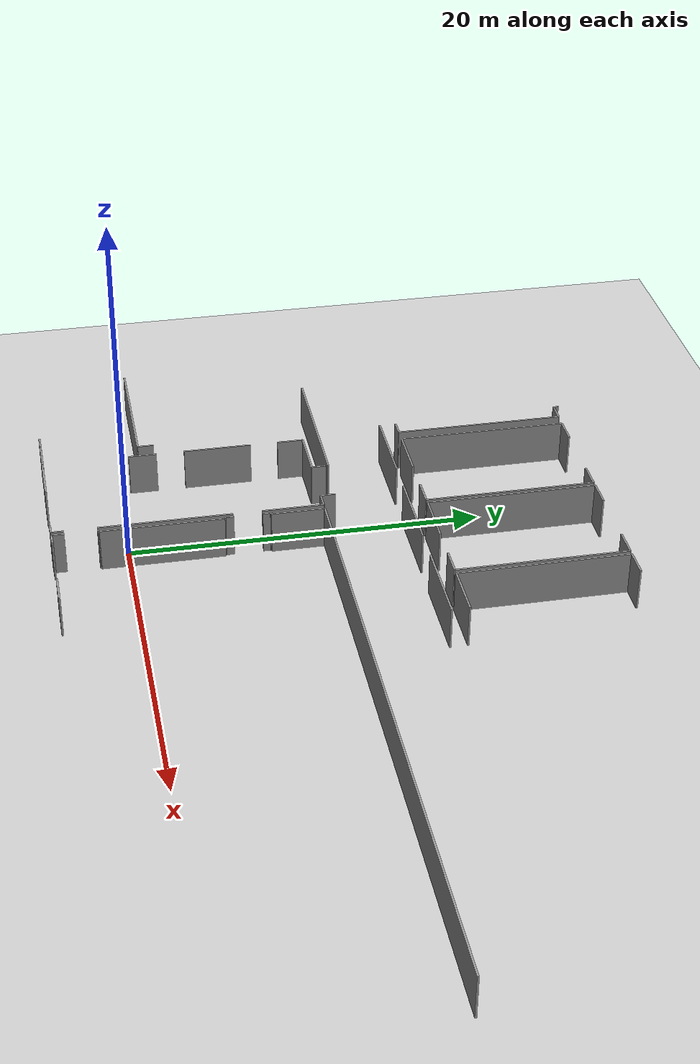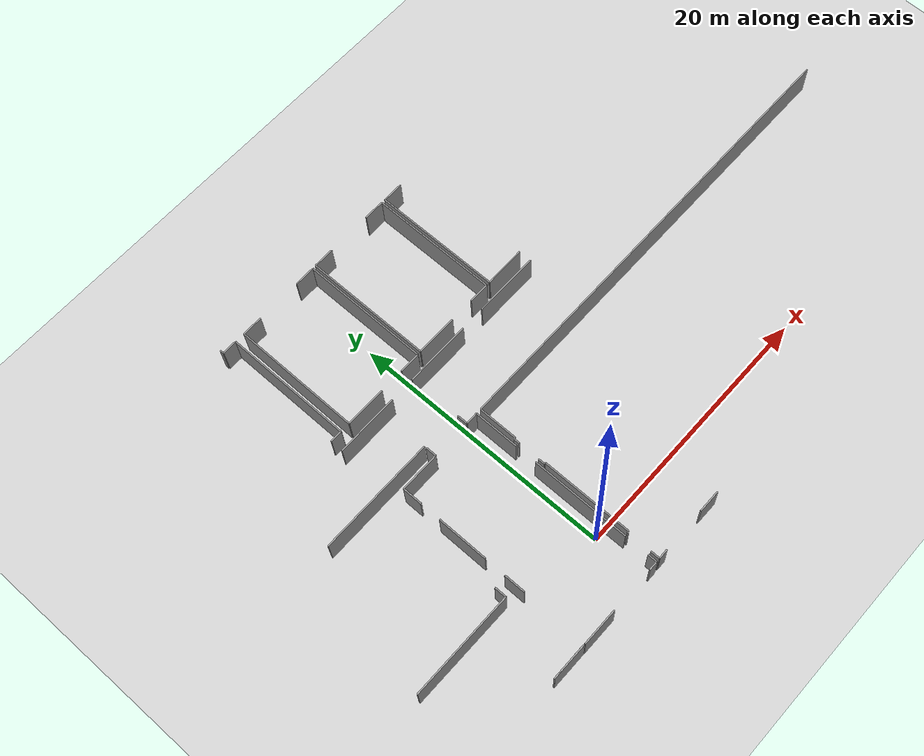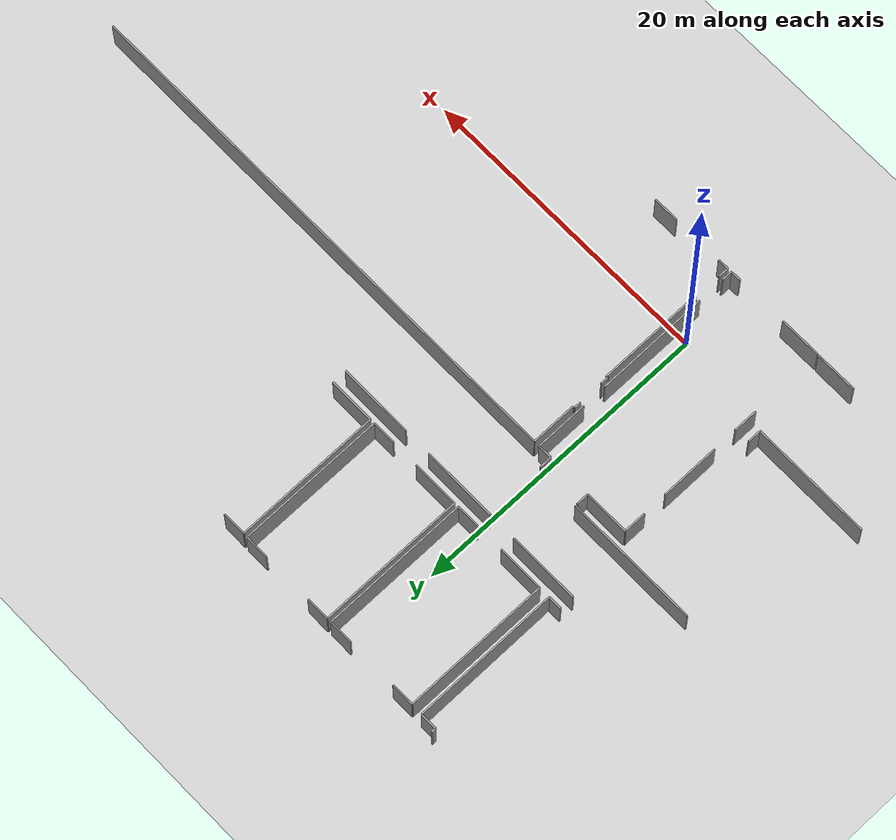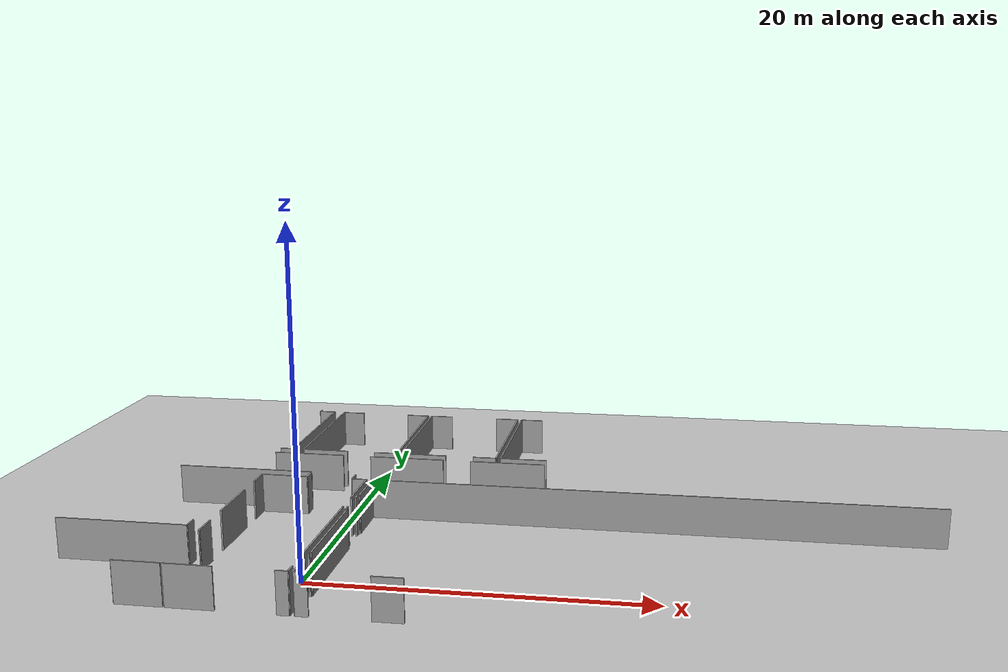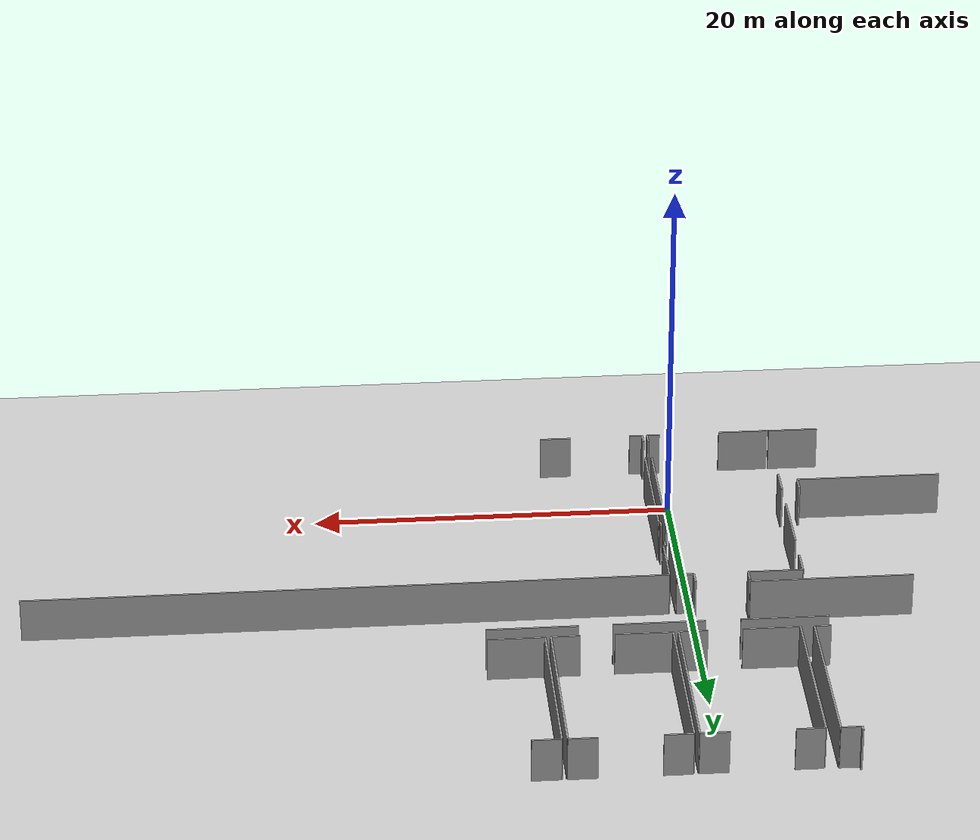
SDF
<sdf version="1.6">
 <world name="default">
  <model name="ground_plane">
   <static>1</static>
   <link name="link">
    <collision name="collision">
     <geometry><plane><normal>0 0 1</normal><size>100 100</size></plane></geometry>
     <surface><friction><ode><mu>100</mu><mu2>50</mu2></ode></friction></surface>
    </collision>
    <visual name="visual">
     <cast_shadows>0</cast_shadows>
     <geometry><plane><normal>0 0 1</normal><size>100 100</size></plane></geometry>
     <material>
      <script><uri>file://media/materials/scripts/gazebo.material</uri><name>Gazebo/Grey</name></script>
     </material>
    </visual>
   </link>
  </model>
  <model name="0510032192_A_40_1_103">
   <static>1</static>
   <link name="Wall_186">
    <collision name="Wall_186_Collision">
     <geometry><box><size>4.75575826102 0.1 2.5</size></box></geometry>
     <pose>2.37787913051 0 1.25 0 0 0</pose>
    </collision>
    <visual name="Wall_186_Visual">
     <pose>2.37787913051 0 1.25 0 0 0</pose>
     <geometry><box><size>4.75575826102 0.1 2.5</size></box></geometry>
     <material>
      <script><uri>file://media/materials/scripts/gazebo.material</uri><name>Gazebo/Grey</name></script>
      <ambient>1 1 1 1</ambient>
     </material>
    </visual>
    <pose>60.6250555817 -10.9934826522 0 0 0 0.0</pose>
   </link>
   <link name="Wall_187">
    <collision name="Wall_187_Collision">
     <geometry><box><size>4.98278556274 0.1 2.5</size></box></geometry>
     <pose>2.49139278137 0 1.25 0 0 0</pose>
    </collision>
    <visual name="Wall_187_Visual">
     <pose>2.49139278137 0 1.25 0 0 0</pose>
     <geometry><box><size>4.98278556274 0.1 2.5</size></box></geometry>
     <material>
      <script><uri>file://media/materials/scripts/gazebo.material</uri><name>Gazebo/Grey</name></script>
      <ambient>1 1 1 1</ambient>
     </material>
    </visual>
    <pose>67.2596648584 -10.9934826522 0 0 0 0.0</pose>
   </link>
   <link name="Wall_188">
    <collision name="Wall_188_Collision">
     <geometry><box><size>4.95699566781 0.1 2.5</size></box></geometry>
     <pose>2.4784978339 0 1.25 0 0 0</pose>
    </collision>
    <visual name="Wall_188_Visual">
     <pose>2.4784978339 0 1.25 0 0 0</pose>
     <geometry><box><size>4.95699566781 0.1 2.5</size></box></geometry>
     <material>
      <script><uri>file://media/materials/scripts/gazebo.material</uri><name>Gazebo/Grey</name></script>
      <ambient>1 1 1 1</ambient>
     </material>
    </visual>
    <pose>74.0822989849 -10.9934826522 0 0 0 0.0</pose>
   </link>
   <link name="Wall_203">
    <collision name="Wall_203_Collision">
     <geometry><box><size>8.904120031 0.1 2.5</size></box></geometry>
     <pose>4.4520600155 0 1.25 0 0 0</pose>
    </collision>
    <visual name="Wall_203_Visual">
     <pose>4.4520600155 0 1.25 0 0 0</pose>
     <geometry><box><size>8.904120031 0.1 2.5</size></box></geometry>
     <material>
      <script><uri>file://media/materials/scripts/gazebo.material</uri><name>Gazebo/Grey</name></script>
      <ambient>1 1 1 1</ambient>
     </material>
    </visual>
    <pose>64.3764054222 -14.7831997256 0 0 0 3.14159265359</pose>
   </link>
   <link name="Wall_216">
    <collision name="Wall_216_Collision">
     <geometry><box><size>0.292327823866 0.1 2.5</size></box></geometry>
     <pose>0.146163911933 0 1.25 0 0 0</pose>
    </collision>
    <visual name="Wall_216_Visual">
     <pose>0.146163911933 0 1.25 0 0 0</pose>
     <geometry><box><size>0.292327823866 0.1 2.5</size></box></geometry>
     <material>
      <script><uri>file://media/materials/scripts/gazebo.material</uri><name>Gazebo/Grey</name></script>
      <ambient>1 1 1 1</ambient>
     </material>
    </visual>
    <pose>60.4343628117 -0.0200729231512 0 0 0 -1.57079632679</pose>
   </link>
   <link name="Wall_217">
    <collision name="Wall_217_Collision">
     <geometry><box><size>1.11938307522 0.1 2.5</size></box></geometry>
     <pose>0.559691537611 0 1.25 0 0 0</pose>
    </collision>
    <visual name="Wall_217_Visual">
     <pose>0.559691537611 0 1.25 0 0 0</pose>
     <geometry><box><size>1.11938307522 0.1 2.5</size></box></geometry>
     <material>
      <script><uri>file://media/materials/scripts/gazebo.material</uri><name>Gazebo/Grey</name></script>
      <ambient>1 1 1 1</ambient>
     </material>
    </visual>
    <pose>60.4343628117 -0.312400747018 0 0 0 0.0</pose>
   </link>
   <link name="Wall_218">
    <collision name="Wall_218_Collision">
     <geometry><box><size>9.72977780036 0.1 2.5</size></box></geometry>
     <pose>4.86488890018 0 1.25 0 0 0</pose>
    </collision>
    <visual name="Wall_218_Visual">
     <pose>4.86488890018 0 1.25 0 0 0</pose>
     <geometry><box><size>9.72977780036 0.1 2.5</size></box></geometry>
     <material>
      <script><uri>file://media/materials/scripts/gazebo.material</uri><name>Gazebo/Grey</name></script>
      <ambient>1 1 1 1</ambient>
     </material>
    </visual>
    <pose>61.553745887 -0.312400747018 0 0 0 -1.57079632679</pose>
   </link>
   <link name="Wall_219">
    <collision name="Wall_219_Collision">
     <geometry><box><size>0.914207310101 0.1 2.5</size></box></geometry>
     <pose>0.457103655051 0 1.25 0 0 0</pose>
    </collision>
    <visual name="Wall_219_Visual">
     <pose>0.457103655051 0 1.25 0 0 0</pose>
     <geometry><box><size>0.914207310101 0.1 2.5</size></box></geometry>
     <material>
      <script><uri>file://media/materials/scripts/gazebo.material</uri><name>Gazebo/Grey</name></script>
      <ambient>1 1 1 1</ambient>
     </material>
    </visual>
    <pose>61.553745887 -10.0421785474 0 0 0 3.14159265359</pose>
   </link>
   <link name="Wall_221">
    <collision name="Wall_221_Collision">
     <geometry><box><size>3.08271822952 0.1 2.5</size></box></geometry>
     <pose>1.54135911476 0 1.25 0 0 0</pose>
    </collision>
    <visual name="Wall_221_Visual">
     <pose>1.54135911476 0 1.25 0 0 0</pose>
     <geometry><box><size>3.08271822952 0.1 2.5</size></box></geometry>
     <material>
      <script><uri>file://media/materials/scripts/gazebo.material</uri><name>Gazebo/Grey</name></script>
      <ambient>1 1 1 1</ambient>
     </material>
    </visual>
    <pose>62.3039396288 -10.0360804441 0 0 0 0.0</pose>
   </link>
   <link name="Wall_222">
    <collision name="Wall_222_Collision">
     <geometry><box><size>1.57788421226 0.1 2.5</size></box></geometry>
     <pose>0.788942106132 0 1.25 0 0 0</pose>
    </collision>
    <visual name="Wall_222_Visual">
     <pose>0.788942106132 0 1.25 0 0 0</pose>
     <geometry><box><size>1.57788421226 0.1 2.5</size></box></geometry>
     <material>
      <script><uri>file://media/materials/scripts/gazebo.material</uri><name>Gazebo/Grey</name></script>
      <ambient>1 1 1 1</ambient>
     </material>
    </visual>
    <pose>67.2567428506 -10.0360804441 0 0 0 0.0</pose>
   </link>
   <link name="Wall_223">
    <collision name="Wall_223_Collision">
     <geometry><box><size>9.699414328 0.1 2.5</size></box></geometry>
     <pose>4.849707164 0 1.25 0 0 0</pose>
    </collision>
    <visual name="Wall_223_Visual">
     <pose>4.849707164 0 1.25 0 0 0</pose>
     <geometry><box><size>9.699414328 0.1 2.5</size></box></geometry>
     <material>
      <script><uri>file://media/materials/scripts/gazebo.material</uri><name>Gazebo/Grey</name></script>
      <ambient>1 1 1 1</ambient>
     </material>
    </visual>
    <pose>68.8346270629 -10.0360804441 0 0 0 1.57079632679</pose>
   </link>
   <link name="Wall_224">
    <collision name="Wall_224_Collision">
     <geometry><box><size>1.57635968646 0.1 2.5</size></box></geometry>
     <pose>0.788179843228 0 1.25 0 0 0</pose>
    </collision>
    <visual name="Wall_224_Visual">
     <pose>0.788179843228 0 1.25 0 0 0</pose>
     <geometry><box><size>1.57635968646 0.1 2.5</size></box></geometry>
     <material>
      <script><uri>file://media/materials/scripts/gazebo.material</uri><name>Gazebo/Grey</name></script>
      <ambient>1 1 1 1</ambient>
     </material>
    </visual>
    <pose>68.8346270629 -0.336666116143 0 0 0 3.14159265359</pose>
   </link>
   <link name="Wall_225">
    <collision name="Wall_225_Collision">
     <geometry><box><size>1.53240252563 0.1 2.5</size></box></geometry>
     <pose>0.766201262816 0 1.25 0 0 0</pose>
    </collision>
    <visual name="Wall_225_Visual">
     <pose>0.766201262816 0 1.25 0 0 0</pose>
     <geometry><box><size>1.53240252563 0.1 2.5</size></box></geometry>
     <material>
      <script><uri>file://media/materials/scripts/gazebo.material</uri><name>Gazebo/Grey</name></script>
      <ambient>1 1 1 1</ambient>
     </material>
    </visual>
    <pose>63.8529848945 -0.336666116143 0 0 0 3.14159265359</pose>
   </link>
   <link name="Wall_226">
    <collision name="Wall_226_Collision">
     <geometry><box><size>9.69942860621 0.1 2.5</size></box></geometry>
     <pose>4.84971430311 0 1.25 0 0 0</pose>
    </collision>
    <visual name="Wall_226_Visual">
     <pose>4.84971430311 0 1.25 0 0 0</pose>
     <geometry><box><size>9.69942860621 0.1 2.5</size></box></geometry>
     <material>
      <script><uri>file://media/materials/scripts/gazebo.material</uri><name>Gazebo/Grey</name></script>
      <ambient>1 1 1 1</ambient>
     </material>
    </visual>
    <pose>62.3205823689 -0.336666116143 0 0 0 -1.57251217511</pose>
   </link>
   <link name="Wall_227">
    <collision name="Wall_227_Collision">
     <geometry><box><size>9.6986520651 0.1 2.5</size></box></geometry>
     <pose>4.84932603255 0 1.25 0 0 0</pose>
    </collision>
    <visual name="Wall_227_Visual">
     <pose>4.84932603255 0 1.25 0 0 0</pose>
     <geometry><box><size>9.6986520651 0.1 2.5</size></box></geometry>
     <material>
      <script><uri>file://media/materials/scripts/gazebo.material</uri><name>Gazebo/Grey</name></script>
      <ambient>1 1 1 1</ambient>
     </material>
    </visual>
    <pose>69.1176806881 -10.0194377041 0 0 0 1.57079632679</pose>
   </link>
   <link name="Wall_228">
    <collision name="Wall_228_Collision">
     <geometry><box><size>1.56619618106 0.1 2.5</size></box></geometry>
     <pose>0.783098090531 0 1.25 0 0 0</pose>
    </collision>
    <visual name="Wall_228_Visual">
     <pose>0.783098090531 0 1.25 0 0 0</pose>
     <geometry><box><size>1.56619618106 0.1 2.5</size></box></geometry>
     <material>
      <script><uri>file://media/materials/scripts/gazebo.material</uri><name>Gazebo/Grey</name></script>
      <ambient>1 1 1 1</ambient>
     </material>
    </visual>
    <pose>69.1176806881 -0.320785638967 0 0 0 0.0</pose>
   </link>
   <link name="Wall_229">
    <collision name="Wall_229_Collision">
     <geometry><box><size>1.58741249857 0.1 2.5</size></box></geometry>
     <pose>0.793706249285 0 1.25 0 0 0</pose>
    </collision>
    <visual name="Wall_229_Visual">
     <pose>0.793706249285 0 1.25 0 0 0</pose>
     <geometry><box><size>1.58741249857 0.1 2.5</size></box></geometry>
     <material>
      <script><uri>file://media/materials/scripts/gazebo.material</uri><name>Gazebo/Grey</name></script>
      <ambient>1 1 1 1</ambient>
     </material>
    </visual>
    <pose>74.057906572 -0.320785638967 0 0 0 0.0</pose>
   </link>
   <link name="Wall_230">
    <collision name="Wall_230_Collision">
     <geometry><box><size>9.7081803514 0.1 2.5</size></box></geometry>
     <pose>4.8540901757 0 1.25 0 0 0</pose>
    </collision>
    <visual name="Wall_230_Visual">
     <pose>4.8540901757 0 1.25 0 0 0</pose>
     <geometry><box><size>9.7081803514 0.1 2.5</size></box></geometry>
     <material>
      <script><uri>file://media/materials/scripts/gazebo.material</uri><name>Gazebo/Grey</name></script>
      <ambient>1 1 1 1</ambient>
     </material>
    </visual>
    <pose>75.6453190705 -0.320785638967 0 0 0 -1.57079632679</pose>
   </link>
   <link name="Wall_231">
    <collision name="Wall_231_Collision">
     <geometry><box><size>1.56124147218 0.1 2.5</size></box></geometry>
     <pose>0.780620736092 0 1.25 0 0 0</pose>
    </collision>
    <visual name="Wall_231_Visual">
     <pose>0.780620736092 0 1.25 0 0 0</pose>
     <geometry><box><size>1.56124147218 0.1 2.5</size></box></geometry>
     <material>
      <script><uri>file://media/materials/scripts/gazebo.material</uri><name>Gazebo/Grey</name></script>
      <ambient>1 1 1 1</ambient>
     </material>
    </visual>
    <pose>75.6453190705 -10.0289659904 0 0 0 3.14159265359</pose>
   </link>
   <link name="Wall_232">
    <collision name="Wall_232_Collision">
     <geometry><box><size>3.11335037002 0.1 2.5</size></box></geometry>
     <pose>1.55667518501 0 1.25 0 0 0</pose>
    </collision>
    <visual name="Wall_232_Visual">
     <pose>1.55667518501 0 1.25 0 0 0</pose>
     <geometry><box><size>3.11335037002 0.1 2.5</size></box></geometry>
     <material>
      <script><uri>file://media/materials/scripts/gazebo.material</uri><name>Gazebo/Grey</name></script>
      <ambient>1 1 1 1</ambient>
     </material>
    </visual>
    <pose>72.2310164776 -10.0289659904 0 0 0 3.13853218816</pose>
   </link>
   <link name="Wall_233">
    <collision name="Wall_233_Collision">
     <geometry><box><size>3.08436979914 0.1 2.5</size></box></geometry>
     <pose>1.54218489957 0 1.25 0 0 0</pose>
    </collision>
    <visual name="Wall_233_Visual">
     <pose>1.54218489957 0 1.25 0 0 0</pose>
     <geometry><box><size>3.08436979914 0.1 2.5</size></box></geometry>
     <material>
      <script><uri>file://media/materials/scripts/gazebo.material</uri><name>Gazebo/Grey</name></script>
      <ambient>1 1 1 1</ambient>
     </material>
    </visual>
    <pose>75.9528921525 -10.020199967 0 0 0 0.0</pose>
   </link>
   <link name="Wall_237">
    <collision name="Wall_237_Collision">
     <geometry><box><size>1.56899114505 0.1 2.5</size></box></geometry>
     <pose>0.784495572523 0 1.25 0 0 0</pose>
    </collision>
    <visual name="Wall_237_Visual">
     <pose>0.784495572523 0 1.25 0 0 0</pose>
     <geometry><box><size>1.56899114505 0.1 2.5</size></box></geometry>
     <material>
      <script><uri>file://media/materials/scripts/gazebo.material</uri><name>Gazebo/Grey</name></script>
      <ambient>1 1 1 1</ambient>
     </material>
    </visual>
    <pose>77.5089248282 -0.33145731963 0 0 0 3.14159265359</pose>
   </link>
   <link name="Wall_238">
    <collision name="Wall_238_Collision">
     <geometry><box><size>9.68875131316 0.1 2.5</size></box></geometry>
     <pose>4.84437565658 0 1.25 0 0 0</pose>
    </collision>
    <visual name="Wall_238_Visual">
     <pose>4.84437565658 0 1.25 0 0 0</pose>
     <geometry><box><size>9.68875131316 0.1 2.5</size></box></geometry>
     <material>
      <script><uri>file://media/materials/scripts/gazebo.material</uri><name>Gazebo/Grey</name></script>
      <ambient>1 1 1 1</ambient>
     </material>
    </visual>
    <pose>75.9399336831 -0.33145731963 0 0 0 -1.5694588507</pose>
   </link>
   <link name="Wall_318">
    <collision name="Wall_318_Collision">
     <geometry><box><size>0.701281872118 0.1 2.5</size></box></geometry>
     <pose>0.350640936059 0 1.25 0 0 0</pose>
    </collision>
    <visual name="Wall_318_Visual">
     <pose>0.350640936059 0 1.25 0 0 0</pose>
     <geometry><box><size>0.701281872118 0.1 2.5</size></box></geometry>
     <material>
      <script><uri>file://media/materials/scripts/gazebo.material</uri><name>Gazebo/Grey</name></script>
      <ambient>1 1 1 1</ambient>
     </material>
    </visual>
    <pose>68.5604665049 -30.8940073431 0 0 0 1.57079632679</pose>
   </link>
   <link name="Wall_319">
    <collision name="Wall_319_Collision">
     <geometry><box><size>0.0895658912759 0.1 2.5</size></box></geometry>
     <pose>0.044782945638 0 1.25 0 0 0</pose>
    </collision>
    <visual name="Wall_319_Visual">
     <pose>0.044782945638 0 1.25 0 0 0</pose>
     <geometry><box><size>0.0895658912759 0.1 2.5</size></box></geometry>
     <material>
      <script><uri>file://media/materials/scripts/gazebo.material</uri><name>Gazebo/Grey</name></script>
      <ambient>1 1 1 1</ambient>
     </material>
    </visual>
    <pose>68.5604665049 -28.3771422764 0 0 0 1.57079632679</pose>
   </link>
   <link name="Wall_320">
    <collision name="Wall_320_Collision">
     <geometry><box><size>0.0992212213993 0.1 2.5</size></box></geometry>
     <pose>0.0496106106996 0 1.25 0 0 0</pose>
    </collision>
    <visual name="Wall_320_Visual">
     <pose>0.0496106106996 0 1.25 0 0 0</pose>
     <geometry><box><size>0.0992212213993 0.1 2.5</size></box></geometry>
     <material>
      <script><uri>file://media/materials/scripts/gazebo.material</uri><name>Gazebo/Grey</name></script>
      <ambient>1 1 1 1</ambient>
     </material>
    </visual>
    <pose>68.5604665049 -28.2875763851 0 0 0 0.0</pose>
   </link>
   <link name="Wall_321">
    <collision name="Wall_321_Collision">
     <geometry><box><size>6.92020377828 0.1 2.5</size></box></geometry>
     <pose>3.46010188914 0 1.25 0 0 0</pose>
    </collision>
    <visual name="Wall_321_Visual">
     <pose>3.46010188914 0 1.25 0 0 0</pose>
     <geometry><box><size>6.92020377828 0.1 2.5</size></box></geometry>
     <material>
      <script><uri>file://media/materials/scripts/gazebo.material</uri><name>Gazebo/Grey</name></script>
      <ambient>1 1 1 1</ambient>
     </material>
    </visual>
    <pose>68.6596877263 -28.2875763851 0 0 0 1.57079632679</pose>
   </link>
   <link name="Wall_322">
    <collision name="Wall_322_Collision">
     <geometry><box><size>0.0997293966689 0.1 2.5</size></box></geometry>
     <pose>0.0498646983345 0 1.25 0 0 0</pose>
    </collision>
    <visual name="Wall_322_Visual">
     <pose>0.0498646983345 0 1.25 0 0 0</pose>
     <geometry><box><size>0.0997293966689 0.1 2.5</size></box></geometry>
     <material>
      <script><uri>file://media/materials/scripts/gazebo.material</uri><name>Gazebo/Grey</name></script>
      <ambient>1 1 1 1</ambient>
     </material>
    </visual>
    <pose>68.6596877263 -21.3673726068 0 0 0 3.14159265359</pose>
   </link>
   <link name="Wall_323">
    <collision name="Wall_323_Collision">
     <geometry><box><size>0.510843189816 0.1 2.5</size></box></geometry>
     <pose>0.255421594908 0 1.25 0 0 0</pose>
    </collision>
    <visual name="Wall_323_Visual">
     <pose>0.255421594908 0 1.25 0 0 0</pose>
     <geometry><box><size>0.510843189816 0.1 2.5</size></box></geometry>
     <material>
      <script><uri>file://media/materials/scripts/gazebo.material</uri><name>Gazebo/Grey</name></script>
      <ambient>1 1 1 1</ambient>
     </material>
    </visual>
    <pose>68.5599583296 -21.3673726068 0 0 0 1.57079632679</pose>
   </link>
   <link name="Wall_324">
    <collision name="Wall_324_Collision">
     <geometry><box><size>0.46104201339 0.1 2.5</size></box></geometry>
     <pose>0.230521006695 0 1.25 0 0 0</pose>
    </collision>
    <visual name="Wall_324_Visual">
     <pose>0.230521006695 0 1.25 0 0 0</pose>
     <geometry><box><size>0.46104201339 0.1 2.5</size></box></geometry>
     <material>
      <script><uri>file://media/materials/scripts/gazebo.material</uri><name>Gazebo/Grey</name></script>
      <ambient>1 1 1 1</ambient>
     </material>
    </visual>
    <pose>68.5599583296 -19.2362125697 0 0 0 1.57079632679</pose>
   </link>
   <link name="Wall_325">
    <collision name="Wall_325_Collision">
     <geometry><box><size>0.11243377841 0.1 2.5</size></box></geometry>
     <pose>0.0562168892051 0 1.25 0 0 0</pose>
    </collision>
    <visual name="Wall_325_Visual">
     <pose>0.0562168892051 0 1.25 0 0 0</pose>
     <geometry><box><size>0.11243377841 0.1 2.5</size></box></geometry>
     <material>
      <script><uri>file://media/materials/scripts/gazebo.material</uri><name>Gazebo/Grey</name></script>
      <ambient>1 1 1 1</ambient>
     </material>
    </visual>
    <pose>68.5599583296 -18.7751705563 0 0 0 0.0</pose>
   </link>
   <link name="Wall_326">
    <collision name="Wall_326_Collision">
     <geometry><box><size>3.01284412994 0.1 2.5</size></box></geometry>
     <pose>1.50642206497 0 1.25 0 0 0</pose>
    </collision>
    <visual name="Wall_326_Visual">
     <pose>1.50642206497 0 1.25 0 0 0</pose>
     <geometry><box><size>3.01284412994 0.1 2.5</size></box></geometry>
     <material>
      <script><uri>file://media/materials/scripts/gazebo.material</uri><name>Gazebo/Grey</name></script>
      <ambient>1 1 1 1</ambient>
     </material>
    </visual>
    <pose>68.672392108 -18.7751705563 0 0 0 1.57079632679</pose>
   </link>
   <link name="Wall_327">
    <collision name="Wall_327_Collision">
     <geometry><box><size>35.1492129636 0.1 2.5</size></box></geometry>
     <pose>17.5746064818 0 1.25 0 0 0</pose>
    </collision>
    <visual name="Wall_327_Visual">
     <pose>17.5746064818 0 1.25 0 0 0</pose>
     <geometry><box><size>35.1492129636 0.1 2.5</size></box></geometry>
     <material>
      <script><uri>file://media/materials/scripts/gazebo.material</uri><name>Gazebo/Grey</name></script>
      <ambient>1 1 1 1</ambient>
     </material>
    </visual>
    <pose>68.672392108 -15.7623264264 0 0 0 0.0</pose>
   </link>
   <link name="Wall_335">
    <collision name="Wall_335_Collision">
     <geometry><box><size>1.73592672113 0.1 2.5</size></box></geometry>
     <pose>0.867963360563 0 1.25 0 0 0</pose>
    </collision>
    <visual name="Wall_335_Visual">
     <pose>0.867963360563 0 1.25 0 0 0</pose>
     <geometry><box><size>1.73592672113 0.1 2.5</size></box></geometry>
     <material>
      <script><uri>file://media/materials/scripts/gazebo.material</uri><name>Gazebo/Grey</name></script>
      <ambient>1 1 1 1</ambient>
     </material>
    </visual>
    <pose>74.4171864876 -30.8772375592 0 0 0 3.14159265359</pose>
   </link>
   <link name="Wall_336">
    <collision name="Wall_336_Collision">
     <geometry><box><size>0.736155868642 0.1 2.5</size></box></geometry>
     <pose>0.368077934321 0 1.25 0 0 0</pose>
    </collision>
    <visual name="Wall_336_Visual">
     <pose>0.368077934321 0 1.25 0 0 0</pose>
     <geometry><box><size>0.736155868642 0.1 2.5</size></box></geometry>
     <material>
      <script><uri>file://media/materials/scripts/gazebo.material</uri><name>Gazebo/Grey</name></script>
      <ambient>1 1 1 1</ambient>
     </material>
    </visual>
    <pose>69.2964313392 -30.8772375592 0 0 0 -3.11881047475</pose>
   </link>
   <link name="Wall_337">
    <collision name="Wall_337_Collision">
     <geometry><box><size>1.62400111799 0.1 2.5</size></box></geometry>
     <pose>0.812000558993 0 1.25 0 0 0</pose>
    </collision>
    <visual name="Wall_337_Visual">
     <pose>0.812000558993 0 1.25 0 0 0</pose>
     <geometry><box><size>1.62400111799 0.1 2.5</size></box></geometry>
     <material>
      <script><uri>file://media/materials/scripts/gazebo.material</uri><name>Gazebo/Grey</name></script>
      <ambient>1 1 1 1</ambient>
     </material>
    </visual>
    <pose>61.3826178649 -25.9736002947 0 0 0 1.57079632679</pose>
   </link>
   <link name="Wall_338">
    <collision name="Wall_338_Collision">
     <geometry><box><size>3.88499993648 0.1 2.5</size></box></geometry>
     <pose>1.94249996824 0 1.25 0 0 0</pose>
    </collision>
    <visual name="Wall_338_Visual">
     <pose>1.94249996824 0 1.25 0 0 0</pose>
     <geometry><box><size>3.88499993648 0.1 2.5</size></box></geometry>
     <material>
      <script><uri>file://media/materials/scripts/gazebo.material</uri><name>Gazebo/Grey</name></script>
      <ambient>1 1 1 1</ambient>
     </material>
    </visual>
    <pose>61.3826178649 -22.7381753967 0 0 0 1.57079632679</pose>
   </link>
   <link name="Wall_339">
    <collision name="Wall_339_Collision">
     <geometry><box><size>1.50356357908 0.1 2.5</size></box></geometry>
     <pose>0.751781789539 0 1.25 0 0 0</pose>
    </collision>
    <visual name="Wall_339_Visual">
     <pose>0.751781789539 0 1.25 0 0 0</pose>
     <geometry><box><size>1.50356357908 0.1 2.5</size></box></geometry>
     <material>
      <script><uri>file://media/materials/scripts/gazebo.material</uri><name>Gazebo/Grey</name></script>
      <ambient>1 1 1 1</ambient>
     </material>
    </visual>
    <pose>61.3826178649 -17.255091281 0 0 0 1.57079632679</pose>
   </link>
   <link name="Wall_340">
    <collision name="Wall_340_Collision">
     <geometry><box><size>2.99772591567 0.1 2.5</size></box></geometry>
     <pose>1.49886295783 0 1.25 0 0 0</pose>
    </collision>
    <visual name="Wall_340_Visual">
     <pose>1.49886295783 0 1.25 0 0 0</pose>
     <geometry><box><size>2.99772591567 0.1 2.5</size></box></geometry>
     <material>
      <script><uri>file://media/materials/scripts/gazebo.material</uri><name>Gazebo/Grey</name></script>
      <ambient>1 1 1 1</ambient>
     </material>
    </visual>
    <pose>61.3826178649 -15.7515277019 0 0 0 0.0</pose>
   </link>
   <link name="Wall_341">
    <collision name="Wall_341_Collision">
     <geometry><box><size>0.81358860671 0.1 2.5</size></box></geometry>
     <pose>0.406794303355 0 1.25 0 0 0</pose>
    </collision>
    <visual name="Wall_341_Visual">
     <pose>0.406794303355 0 1.25 0 0 0</pose>
     <geometry><box><size>0.81358860671 0.1 2.5</size></box></geometry>
     <material>
      <script><uri>file://media/materials/scripts/gazebo.material</uri><name>Gazebo/Grey</name></script>
      <ambient>1 1 1 1</ambient>
     </material>
    </visual>
    <pose>64.3803437806 -15.7515277019 0 0 0 1.57079632679</pose>
   </link>
   <link name="Wall_342">
    <collision name="Wall_342_Collision">
     <geometry><box><size>0.825911856999 0.1 2.5</size></box></geometry>
     <pose>0.4129559285 0 1.25 0 0 0</pose>
    </collision>
    <visual name="Wall_342_Visual">
     <pose>0.4129559285 0 1.25 0 0 0</pose>
     <geometry><box><size>0.825911856999 0.1 2.5</size></box></geometry>
     <material>
      <script><uri>file://media/materials/scripts/gazebo.material</uri><name>Gazebo/Grey</name></script>
      <ambient>1 1 1 1</ambient>
     </material>
    </visual>
    <pose>67.3512634508 -14.9379390952 0 0 0 -1.57079632679</pose>
   </link>
   <link name="Wall_343">
    <collision name="Wall_343_Collision">
     <geometry><box><size>0.931104137817 0.1 2.5</size></box></geometry>
     <pose>0.465552068909 0 1.25 0 0 0</pose>
    </collision>
    <visual name="Wall_343_Visual">
     <pose>0.465552068909 0 1.25 0 0 0</pose>
     <geometry><box><size>0.931104137817 0.1 2.5</size></box></geometry>
     <material>
      <script><uri>file://media/materials/scripts/gazebo.material</uri><name>Gazebo/Grey</name></script>
      <ambient>1 1 1 1</ambient>
     </material>
    </visual>
    <pose>67.3512634508 -15.7638509522 0 0 0 0.0</pose>
   </link>
   <link name="Wall_344">
    <collision name="Wall_344_Collision">
     <geometry><box><size>3.4605465425 0.1 2.5</size></box></geometry>
     <pose>1.73027327125 0 1.25 0 0 0</pose>
    </collision>
    <visual name="Wall_344_Visual">
     <pose>1.73027327125 0 1.25 0 0 0</pose>
     <geometry><box><size>3.4605465425 0.1 2.5</size></box></geometry>
     <material>
      <script><uri>file://media/materials/scripts/gazebo.material</uri><name>Gazebo/Grey</name></script>
      <ambient>1 1 1 1</ambient>
     </material>
    </visual>
    <pose>68.2823675886 -15.7638509522 0 0 0 -1.57079632679</pose>
   </link>
   <link name="Wall_345">
    <collision name="Wall_345_Collision">
     <geometry><box><size>7.51121161689 0.1 2.5</size></box></geometry>
     <pose>3.75560580844 0 1.25 0 0 0</pose>
    </collision>
    <visual name="Wall_345_Visual">
     <pose>3.75560580844 0 1.25 0 0 0</pose>
     <geometry><box><size>7.51121161689 0.1 2.5</size></box></geometry>
     <material>
      <script><uri>file://media/materials/scripts/gazebo.material</uri><name>Gazebo/Grey</name></script>
      <ambient>1 1 1 1</ambient>
     </material>
    </visual>
    <pose>68.2823675886 -20.8595784686 0 0 0 -1.57079632679</pose>
   </link>
   <link name="Wall_346">
    <collision name="Wall_346_Collision">
     <geometry><box><size>0.70953972025 0.1 2.5</size></box></geometry>
     <pose>0.354769860125 0 1.25 0 0 0</pose>
    </collision>
    <visual name="Wall_346_Visual">
     <pose>0.354769860125 0 1.25 0 0 0</pose>
     <geometry><box><size>0.70953972025 0.1 2.5</size></box></geometry>
     <material>
      <script><uri>file://media/materials/scripts/gazebo.material</uri><name>Gazebo/Grey</name></script>
      <ambient>1 1 1 1</ambient>
     </material>
    </visual>
    <pose>68.2823675886 -30.192725471 0 0 0 -1.57079632679</pose>
   </link>
   <link name="Wall_347">
    <collision name="Wall_347_Collision">
     <geometry><box><size>0.705855449545 0.1 2.5</size></box></geometry>
     <pose>0.352927724772 0 1.25 0 0 0</pose>
    </collision>
    <visual name="Wall_347_Visual">
     <pose>0.352927724772 0 1.25 0 0 0</pose>
     <geometry><box><size>0.705855449545 0.1 2.5</size></box></geometry>
     <material>
      <script><uri>file://media/materials/scripts/gazebo.material</uri><name>Gazebo/Grey</name></script>
      <ambient>1 1 1 1</ambient>
     </material>
    </visual>
    <pose>68.2823675886 -30.9022651913 0 0 0 3.14159265359</pose>
   </link>
   <link name="Wall_348">
    <collision name="Wall_348_Collision">
     <geometry><box><size>2.78480047768 0.1 2.5</size></box></geometry>
     <pose>1.39240023884 0 1.25 0 0 0</pose>
    </collision>
    <visual name="Wall_348_Visual">
     <pose>1.39240023884 0 1.25 0 0 0</pose>
     <geometry><box><size>2.78480047768 0.1 2.5</size></box></geometry>
     <material>
      <script><uri>file://media/materials/scripts/gazebo.material</uri><name>Gazebo/Grey</name></script>
      <ambient>1 1 1 1</ambient>
     </material>
    </visual>
    <pose>64.1683076493 -30.9022651913 0 0 0 3.14159265359</pose>
   </link>
   <link name="Wall_349">
    <collision name="Wall_349_Collision">
     <geometry><box><size>0.0173008306003 0.1 2.5</size></box></geometry>
     <pose>0.00865041530015 0 1.25 0 0 0</pose>
    </collision>
    <visual name="Wall_349_Visual">
     <pose>0.00865041530015 0 1.25 0 0 0</pose>
     <geometry><box><size>0.0173008306003 0.1 2.5</size></box></geometry>
     <material>
      <script><uri>file://media/materials/scripts/gazebo.material</uri><name>Gazebo/Grey</name></script>
      <ambient>1 1 1 1</ambient>
     </material>
    </visual>
    <pose>61.3835071716 -25.9563223356 0 0 0 -1.62222153481</pose>
   </link>
   <link name="Wall_364">
    <collision name="Wall_364_Collision">
     <geometry><box><size>0.902138147447 0.1 2.5</size></box></geometry>
     <pose>0.451069073724 0 1.25 0 0 0</pose>
    </collision>
    <visual name="Wall_364_Visual">
     <pose>0.451069073724 0 1.25 0 0 0</pose>
     <geometry><box><size>0.902138147447 0.1 2.5</size></box></geometry>
     <material>
      <script><uri>file://media/materials/scripts/gazebo.material</uri><name>Gazebo/Grey</name></script>
      <ambient>1 1 1 1</ambient>
     </material>
    </visual>
    <pose>60.3916760891 -24.4201084954 0 0 0 -1.57079632679</pose>
   </link>
   <link name="Wall_365">
    <collision name="Wall_365_Collision">
     <geometry><box><size>8.03503051192 0.1 2.5</size></box></geometry>
     <pose>4.01751525596 0 1.25 0 0 0</pose>
    </collision>
    <visual name="Wall_365_Visual">
     <pose>4.01751525596 0 1.25 0 0 0</pose>
     <geometry><box><size>8.03503051192 0.1 2.5</size></box></geometry>
     <material>
      <script><uri>file://media/materials/scripts/gazebo.material</uri><name>Gazebo/Grey</name></script>
      <ambient>1 1 1 1</ambient>
     </material>
    </visual>
    <pose>60.3916760891 -25.3222466429 0 0 0 3.13952137932</pose>
   </link>
   <link name="Wall_378">
    <collision name="Wall_378_Collision">
     <geometry><box><size>2.77679671719 0.1 2.5</size></box></geometry>
     <pose>1.38839835859 0 1.25 0 0 0</pose>
    </collision>
    <visual name="Wall_378_Visual">
     <pose>1.38839835859 0 1.25 0 0 0</pose>
     <geometry><box><size>2.77679671719 0.1 2.5</size></box></geometry>
     <material>
      <script><uri>file://media/materials/scripts/gazebo.material</uri><name>Gazebo/Grey</name></script>
      <ambient>1 1 1 1</ambient>
     </material>
    </visual>
    <pose>61.2981337263 -30.8896878533 0 0 0 3.14159265359</pose>
   </link>
   <link name="Wall_392">
    <collision name="Wall_392_Collision">
     <geometry><box><size>2.78086211934 0.1 2.5</size></box></geometry>
     <pose>1.39043105967 0 1.25 0 0 0</pose>
    </collision>
    <visual name="Wall_392_Visual">
     <pose>1.39043105967 0 1.25 0 0 0</pose>
     <geometry><box><size>2.78086211934 0.1 2.5</size></box></geometry>
     <material>
      <script><uri>file://media/materials/scripts/gazebo.material</uri><name>Gazebo/Grey</name></script>
      <ambient>1 1 1 1</ambient>
     </material>
    </visual>
    <pose>61.2917815355 -30.8891796781 0 0 0 3.14159265359</pose>
   </link>
   <pose>-67.5 26.6902360474 0 0 0 0</pose>
  </model>
 </world>
</sdf>
